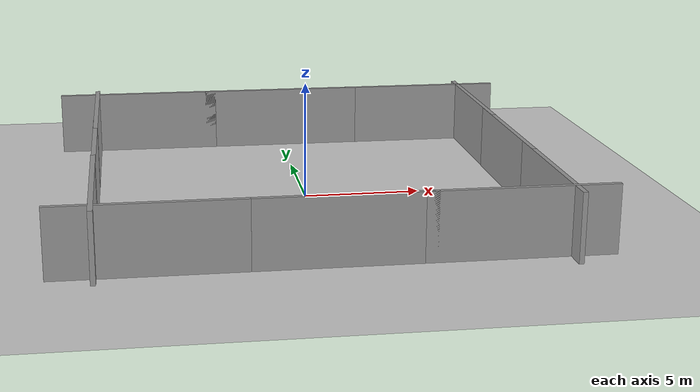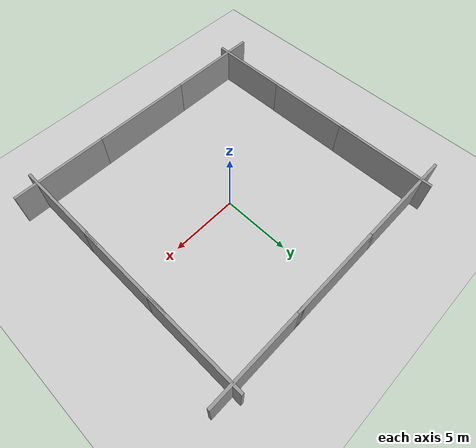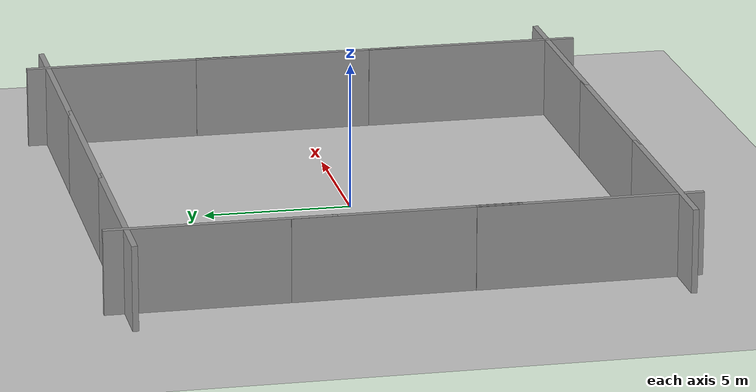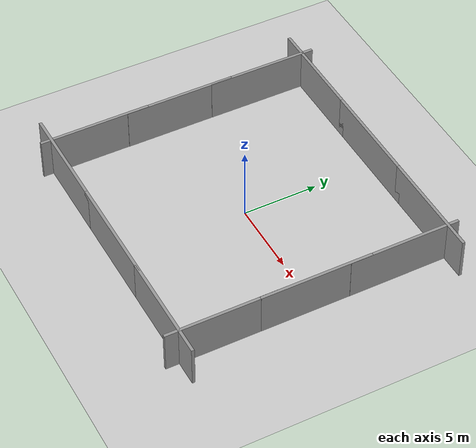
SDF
<sdf version="1.4">
 <world name="default">
  <light name="sun" type="directional">
   <pose>0 0 10 0 -0 0</pose>
   <diffuse>0.8 0.8 0.8 1</diffuse>
   <specular>0.2 0.2 0.2 1</specular>
   <attenuation>
    <range>1000</range>
    <constant>0.9</constant>
    <linear>0.01</linear>
    <quadratic>0.001</quadratic>
   </attenuation>
   <direction>-0.5 0.1 -0.9</direction>
  </light>
  <model name="ground_plane">
   <static>1</static>
   <link name="link">
    <collision name="collision">
     <geometry><plane><normal>0 0 1</normal><size>100 100</size></plane></geometry>
     <surface><friction><ode><mu>100</mu><mu2>50</mu2></ode></friction></surface>
    </collision>
    <visual name="visual">
     <cast_shadows>0</cast_shadows>
     <geometry><plane><normal>0 0 1</normal><size>100 100</size></plane></geometry>
     <material>
      <script><uri>file://media/materials/scripts/gazebo.material</uri><name>Gazebo/Grey</name></script>
     </material>
    </visual>
    <velocity_decay><linear>0</linear><angular>0</angular></velocity_decay>
   </link>
  </model>
  <physics type="ode">
   <max_step_size>0.001</max_step_size>
   <real_time_factor>1</real_time_factor>
   <real_time_update_rate>1000</real_time_update_rate>
   <gravity>0 0 -9.8</gravity>
  </physics>
  <scene><ambient>0.4 0.4 0.4 1</ambient><background>0.7 0.7 0.7 1</background><shadows>1</shadows></scene>
  <spherical_coordinates>
   <surface_model>EARTH_WGS84</surface_model>
   <latitude_deg>0</latitude_deg>
   <longitude_deg>0</longitude_deg>
   <elevation>0</elevation>
   <heading_deg>0</heading_deg>
  </spherical_coordinates>
  <model name="grey_wall">
   <static>1</static>
   <link name="link">
    <pose>0 0 1.4 0 -0 0</pose>
    <collision name="collision"><geometry><box><size>7.5 0.2 2.8</size></box></geometry></collision>
    <visual name="visual">
     <cast_shadows>0</cast_shadows>
     <geometry><box><size>7.5 0.2 2.8</size></box></geometry>
     <material>
      <script>
       <uri>model://grey_wall/materials/scripts</uri>
       <uri>model://grey_wall/materials/textures</uri>
       <name>vrc/grey_wall</name>
      </script>
     </material>
    </visual>
    <velocity_decay><linear>0</linear><angular>0</angular></velocity_decay>
   </link>
   <pose>0 9 0 0 -0 0</pose>
  </model>
  <model name="grey_wall_0">
   <static>1</static>
   <link name="link">
    <pose>0 0 1.4 0 -0 0</pose>
    <collision name="collision"><geometry><box><size>7.5 0.2 2.8</size></box></geometry></collision>
    <visual name="visual">
     <cast_shadows>0</cast_shadows>
     <geometry><box><size>7.5 0.2 2.8</size></box></geometry>
     <material>
      <script>
       <uri>model://grey_wall/materials/scripts</uri>
       <uri>model://grey_wall/materials/textures</uri>
       <name>vrc/grey_wall</name>
      </script>
     </material>
    </visual>
    <velocity_decay><linear>0</linear><angular>0</angular></velocity_decay>
   </link>
   <pose>7 9 0 0 -0 0</pose>
  </model>
  <model name="grey_wall_1">
   <static>1</static>
   <link name="link">
    <pose>0 0 1.4 0 -0 0</pose>
    <collision name="collision"><geometry><box><size>7.5 0.2 2.8</size></box></geometry></collision>
    <visual name="visual">
     <cast_shadows>0</cast_shadows>
     <geometry><box><size>7.5 0.2 2.8</size></box></geometry>
     <material>
      <script>
       <uri>model://grey_wall/materials/scripts</uri>
       <uri>model://grey_wall/materials/textures</uri>
       <name>vrc/grey_wall</name>
      </script>
     </material>
    </visual>
    <velocity_decay><linear>0</linear><angular>0</angular></velocity_decay>
   </link>
   <pose>-7 9 0 0 -0 0</pose>
  </model>
  <model name="grey_wall_2">
   <static>1</static>
   <link name="link">
    <pose>0 0 1.4 0 -0 0</pose>
    <collision name="collision"><geometry><box><size>7.5 0.2 2.8</size></box></geometry></collision>
    <visual name="visual">
     <cast_shadows>0</cast_shadows>
     <geometry><box><size>7.5 0.2 2.8</size></box></geometry>
     <material>
      <script>
       <uri>model://grey_wall/materials/scripts</uri>
       <uri>model://grey_wall/materials/textures</uri>
       <name>vrc/grey_wall</name>
      </script>
     </material>
    </visual>
    <velocity_decay><linear>0</linear><angular>0</angular></velocity_decay>
   </link>
   <pose>0 -9 0 0 -0 0</pose>
  </model>
  <model name="grey_wall_3">
   <static>1</static>
   <link name="link">
    <pose>0 0 1.4 0 -0 0</pose>
    <collision name="collision"><geometry><box><size>7.5 0.2 2.8</size></box></geometry></collision>
    <visual name="visual">
     <cast_shadows>0</cast_shadows>
     <geometry><box><size>7.5 0.2 2.8</size></box></geometry>
     <material>
      <script>
       <uri>model://grey_wall/materials/scripts</uri>
       <uri>model://grey_wall/materials/textures</uri>
       <name>vrc/grey_wall</name>
      </script>
     </material>
    </visual>
    <velocity_decay><linear>0</linear><angular>0</angular></velocity_decay>
   </link>
   <pose>7 -9 0 0 -0 0</pose>
  </model>
  <model name="grey_wall_4">
   <static>1</static>
   <link name="link">
    <pose>0 0 1.4 0 -0 0</pose>
    <collision name="collision"><geometry><box><size>7.5 0.2 2.8</size></box></geometry></collision>
    <visual name="visual">
     <cast_shadows>0</cast_shadows>
     <geometry><box><size>7.5 0.2 2.8</size></box></geometry>
     <material>
      <script>
       <uri>model://grey_wall/materials/scripts</uri>
       <uri>model://grey_wall/materials/textures</uri>
       <name>vrc/grey_wall</name>
      </script>
     </material>
    </visual>
    <velocity_decay><linear>0</linear><angular>0</angular></velocity_decay>
   </link>
   <pose>-7 -9 0 0 -0 0</pose>
  </model>
  <model name="grey_wall_6">
   <static>1</static>
   <link name="link">
    <pose>0 0 1.4 0 -0 0</pose>
    <collision name="collision"><geometry><box><size>7.5 0.2 2.8</size></box></geometry></collision>
    <visual name="visual">
     <cast_shadows>0</cast_shadows>
     <geometry><box><size>7.5 0.2 2.8</size></box></geometry>
     <material>
      <script>
       <uri>model://grey_wall/materials/scripts</uri>
       <uri>model://grey_wall/materials/textures</uri>
       <name>vrc/grey_wall</name>
      </script>
     </material>
    </visual>
    <velocity_decay><linear>0</linear><angular>0</angular></velocity_decay>
   </link>
   <pose>9 0 0 0 0 -1.56979</pose>
  </model>
  <model name="grey_wall_7">
   <static>1</static>
   <link name="link">
    <pose>0 0 1.4 0 -0 0</pose>
    <collision name="collision"><geometry><box><size>7.5 0.2 2.8</size></box></geometry></collision>
    <visual name="visual">
     <cast_shadows>0</cast_shadows>
     <geometry><box><size>7.5 0.2 2.8</size></box></geometry>
     <material>
      <script>
       <uri>model://grey_wall/materials/scripts</uri>
       <uri>model://grey_wall/materials/textures</uri>
       <name>vrc/grey_wall</name>
      </script>
     </material>
    </visual>
    <velocity_decay><linear>0</linear><angular>0</angular></velocity_decay>
   </link>
   <pose>9 6 0 0 0 -1.56854</pose>
  </model>
  <model name="grey_wall_8">
   <static>1</static>
   <link name="link">
    <pose>0 0 1.4 0 -0 0</pose>
    <collision name="collision"><geometry><box><size>7.5 0.2 2.8</size></box></geometry></collision>
    <visual name="visual">
     <cast_shadows>0</cast_shadows>
     <geometry><box><size>7.5 0.2 2.8</size></box></geometry>
     <material>
      <script>
       <uri>model://grey_wall/materials/scripts</uri>
       <uri>model://grey_wall/materials/textures</uri>
       <name>vrc/grey_wall</name>
      </script>
     </material>
    </visual>
    <velocity_decay><linear>0</linear><angular>0</angular></velocity_decay>
   </link>
   <pose>8.99916 -6.22368 0 0 0 -1.57093</pose>
  </model>
  <model name="grey_wall_11">
   <static>1</static>
   <link name="link">
    <pose>0 0 1.4 0 -0 0</pose>
    <collision name="collision"><geometry><box><size>7.5 0.2 2.8</size></box></geometry></collision>
    <visual name="visual">
     <cast_shadows>0</cast_shadows>
     <geometry><box><size>7.5 0.2 2.8</size></box></geometry>
     <material>
      <script>
       <uri>model://grey_wall/materials/scripts</uri>
       <uri>model://grey_wall/materials/textures</uri>
       <name>vrc/grey_wall</name>
      </script>
     </material>
    </visual>
    <velocity_decay><linear>0</linear><angular>0</angular></velocity_decay>
   </link>
   <pose>-9 6 0 0 0 -1.57035</pose>
  </model>
  <model name="grey_wall_12">
   <static>1</static>
   <link name="link">
    <pose>0 0 1.4 0 -0 0</pose>
    <collision name="collision"><geometry><box><size>7.5 0.2 2.8</size></box></geometry></collision>
    <visual name="visual">
     <cast_shadows>0</cast_shadows>
     <geometry><box><size>7.5 0.2 2.8</size></box></geometry>
     <material>
      <script>
       <uri>model://grey_wall/materials/scripts</uri>
       <uri>model://grey_wall/materials/textures</uri>
       <name>vrc/grey_wall</name>
      </script>
     </material>
    </visual>
    <velocity_decay><linear>0</linear><angular>0</angular></velocity_decay>
   </link>
   <pose>-9 0 0 0 0 -1.56866</pose>
  </model>
  <model name="grey_wall_13">
   <static>1</static>
   <link name="link">
    <pose>0 0 1.4 0 -0 0</pose>
    <collision name="collision"><geometry><box><size>7.5 0.2 2.8</size></box></geometry></collision>
    <visual name="visual">
     <cast_shadows>0</cast_shadows>
     <geometry><box><size>7.5 0.2 2.8</size></box></geometry>
     <material>
      <script>
       <uri>model://grey_wall/materials/scripts</uri>
       <uri>model://grey_wall/materials/textures</uri>
       <name>vrc/grey_wall</name>
      </script>
     </material>
    </visual>
    <velocity_decay><linear>0</linear><angular>0</angular></velocity_decay>
   </link>
   <pose>-9 -6 0 0 0 -1.56698</pose>
  </model>
 </world>
</sdf>
